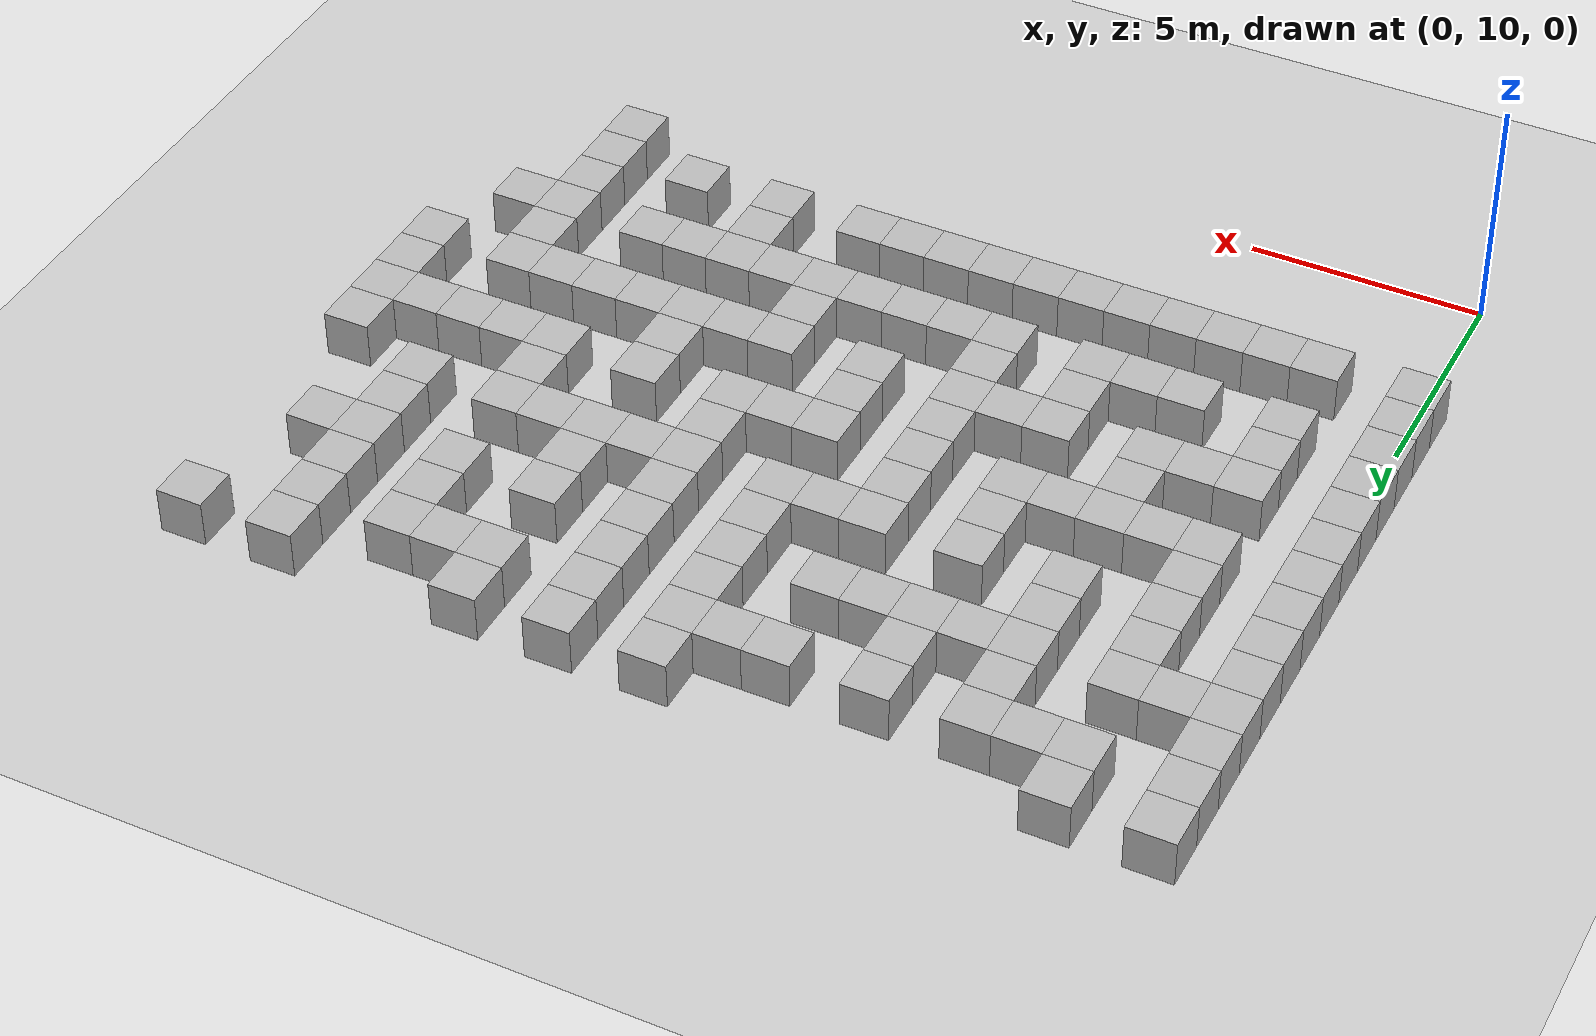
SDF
<sdf version="1.8">
 <world name="custom_maze">
  <model name="ground_plane">
   <static>1</static>
   <link name="link">
    <collision name="collision">
     <geometry><plane><normal>0 0 1</normal><size>100 100</size></plane></geometry>
    </collision>
    <visual name="visual">
     <geometry><plane><normal>0 0 1</normal><size>100 100</size></plane></geometry>
     <material>
      <ambient>0.8 0.8 0.8 1</ambient>
      <diffuse>0.8 0.8 0.8 1</diffuse>
      <specular>0.8 0.8 0.8 1</specular>
     </material>
     <plugin name="__default__" filename="__default__"/>
    </visual>
   </link>
   <plugin name="__default__" filename="__default__"/>
  </model>
  <model name="obstacles">
   <pose>0 0 0.5 0 0 0</pose>
   <static>true</static>
   <link name="wall1">
    <pose>18 17 0 0 0 0</pose>
    <static>true</static>
    <collision name="wall1_collision"><geometry><box><size>1 1 1</size></box></geometry></collision>
    <visual name="wall1_visual"><geometry><box><size>1 1 1</size></box></geometry></visual>
   </link>
   <link name="wall4">
    <pose>11 14 0 0 0 0</pose>
    <static>true</static>
    <collision name="wall4_collision"><geometry><box><size>1 1 1</size></box></geometry></collision>
    <visual name="wall4_visual"><geometry><box><size>1 1 1</size></box></geometry></visual>
   </link>
   <link name="wall9">
    <pose>14 24 0 0 0 0</pose>
    <static>true</static>
    <collision name="wall9_collision"><geometry><box><size>1 1 1</size></box></geometry></collision>
    <visual name="wall9_visual"><geometry><box><size>1 1 1</size></box></geometry></visual>
   </link>
   <link name="wall14">
    <pose>2 27 0 0 0 0</pose>
    <static>true</static>
    <collision name="wall14_collision"><geometry><box><size>1 1 1</size></box></geometry></collision>
    <visual name="wall14_visual"><geometry><box><size>1 1 1</size></box></geometry></visual>
   </link>
   <link name="wall31">
    <pose>14 14 0 0 0 0</pose>
    <static>true</static>
    <collision name="wall31_collision"><geometry><box><size>1 1 1</size></box></geometry></collision>
    <visual name="wall31_visual"><geometry><box><size>1 1 1</size></box></geometry></visual>
   </link>
   <link name="wall35">
    <pose>2 17 0 0 0 0</pose>
    <static>true</static>
    <collision name="wall35_collision"><geometry><box><size>1 1 1</size></box></geometry></collision>
    <visual name="wall35_visual"><geometry><box><size>1 1 1</size></box></geometry></visual>
   </link>
   <link name="wall37">
    <pose>3 18 0 0 0 0</pose>
    <static>true</static>
    <collision name="wall37_collision"><geometry><box><size>1 1 1</size></box></geometry></collision>
    <visual name="wall37_visual"><geometry><box><size>1 1 1</size></box></geometry></visual>
   </link>
   <link name="wall56">
    <pose>13 22 0 0 0 0</pose>
    <static>true</static>
    <collision name="wall56_collision"><geometry><box><size>1 1 1</size></box></geometry></collision>
    <visual name="wall56_visual"><geometry><box><size>1 1 1</size></box></geometry></visual>
   </link>
   <link name="wall63">
    <pose>6 18 0 0 0 0</pose>
    <static>true</static>
    <collision name="wall63_collision"><geometry><box><size>1 1 1</size></box></geometry></collision>
    <visual name="wall63_visual"><geometry><box><size>1 1 1</size></box></geometry></visual>
   </link>
   <link name="wall69">
    <pose>1 24 0 0 0 0</pose>
    <static>true</static>
    <collision name="wall69_collision"><geometry><box><size>1 1 1</size></box></geometry></collision>
    <visual name="wall69_visual"><geometry><box><size>1 1 1</size></box></geometry></visual>
   </link>
   <link name="wall77">
    <pose>9 14 0 0 0 0</pose>
    <static>true</static>
    <collision name="wall77_collision"><geometry><box><size>1 1 1</size></box></geometry></collision>
    <visual name="wall77_visual"><geometry><box><size>1 1 1</size></box></geometry></visual>
   </link>
   <link name="wall80">
    <pose>12 24 0 0 0 0</pose>
    <static>true</static>
    <collision name="wall80_collision"><geometry><box><size>1 1 1</size></box></geometry></collision>
    <visual name="wall80_visual"><geometry><box><size>1 1 1</size></box></geometry></visual>
   </link>
   <link name="wall81">
    <pose>4 20 0 0 0 0</pose>
    <static>true</static>
    <collision name="wall81_collision"><geometry><box><size>1 1 1</size></box></geometry></collision>
    <visual name="wall81_visual"><geometry><box><size>1 1 1</size></box></geometry></visual>
   </link>
   <link name="wall86">
    <pose>0 27 0 0 0 0</pose>
    <static>true</static>
    <collision name="wall86_collision"><geometry><box><size>1 1 1</size></box></geometry></collision>
    <visual name="wall86_visual"><geometry><box><size>1 1 1</size></box></geometry></visual>
   </link>
   <link name="wall99">
    <pose>20 18 0 0 0 0</pose>
    <static>true</static>
    <collision name="wall99_collision"><geometry><box><size>1 1 1</size></box></geometry></collision>
    <visual name="wall99_visual"><geometry><box><size>1 1 1</size></box></geometry></visual>
   </link>
   <link name="wall100">
    <pose>12 14 0 0 0 0</pose>
    <static>true</static>
    <collision name="wall100_collision"><geometry><box><size>1 1 1</size></box></geometry></collision>
    <visual name="wall100_visual"><geometry><box><size>1 1 1</size></box></geometry></visual>
   </link>
   <link name="wall105">
    <pose>8 21 0 0 0 0</pose>
    <static>true</static>
    <collision name="wall105_collision"><geometry><box><size>1 1 1</size></box></geometry></collision>
    <visual name="wall105_visual"><geometry><box><size>1 1 1</size></box></geometry></visual>
   </link>
   <link name="wall106">
    <pose>0 17 0 0 0 0</pose>
    <static>true</static>
    <collision name="wall106_collision"><geometry><box><size>1 1 1</size></box></geometry></collision>
    <visual name="wall106_visual"><geometry><box><size>1 1 1</size></box></geometry></visual>
   </link>
   <link name="wall122">
    <pose>11 16 0 0 0 0</pose>
    <static>true</static>
    <collision name="wall122_collision"><geometry><box><size>1 1 1</size></box></geometry></collision>
    <visual name="wall122_visual"><geometry><box><size>1 1 1</size></box></geometry></visual>
   </link>
   <link name="wall123">
    <pose>10 20 0 0 0 0</pose>
    <static>true</static>
    <collision name="wall123_collision"><geometry><box><size>1 1 1</size></box></geometry></collision>
    <visual name="wall123_visual"><geometry><box><size>1 1 1</size></box></geometry></visual>
   </link>
   <link name="wall129">
    <pose>14 26 0 0 0 0</pose>
    <static>true</static>
    <collision name="wall129_collision"><geometry><box><size>1 1 1</size></box></geometry></collision>
    <visual name="wall129_visual"><geometry><box><size>1 1 1</size></box></geometry></visual>
   </link>
   <link name="wall147">
    <pose>14 16 0 0 0 0</pose>
    <static>true</static>
    <collision name="wall147_collision"><geometry><box><size>1 1 1</size></box></geometry></collision>
    <visual name="wall147_visual"><geometry><box><size>1 1 1</size></box></geometry></visual>
   </link>
   <link name="wall151">
    <pose>6 17 0 0 0 0</pose>
    <static>true</static>
    <collision name="wall151_collision"><geometry><box><size>1 1 1</size></box></geometry></collision>
    <visual name="wall151_visual"><geometry><box><size>1 1 1</size></box></geometry></visual>
   </link>
   <link name="wall152">
    <pose>10 23 0 0 0 0</pose>
    <static>true</static>
    <collision name="wall152_collision"><geometry><box><size>1 1 1</size></box></geometry></collision>
    <visual name="wall152_visual"><geometry><box><size>1 1 1</size></box></geometry></visual>
   </link>
   <link name="wall166">
    <pose>20 27 0 0 0 0</pose>
    <static>true</static>
    <collision name="wall166_collision"><geometry><box><size>1 1 1</size></box></geometry></collision>
    <visual name="wall166_visual"><geometry><box><size>1 1 1</size></box></geometry></visual>
   </link>
   <link name="wall173">
    <pose>9 26 0 0 0 0</pose>
    <static>true</static>
    <collision name="wall173_collision"><geometry><box><size>1 1 1</size></box></geometry></collision>
    <visual name="wall173_visual"><geometry><box><size>1 1 1</size></box></geometry></visual>
   </link>
   <link name="wall176">
    <pose>6 20 0 0 0 0</pose>
    <static>true</static>
    <collision name="wall176_collision"><geometry><box><size>1 1 1</size></box></geometry></collision>
    <visual name="wall176_visual"><geometry><box><size>1 1 1</size></box></geometry></visual>
   </link>
   <link name="wall189">
    <pose>9 16 0 0 0 0</pose>
    <static>true</static>
    <collision name="wall189_collision"><geometry><box><size>1 1 1</size></box></geometry></collision>
    <visual name="wall189_visual"><geometry><box><size>1 1 1</size></box></geometry></visual>
   </link>
   <link name="wall190">
    <pose>8 20 0 0 0 0</pose>
    <static>true</static>
    <collision name="wall190_collision"><geometry><box><size>1 1 1</size></box></geometry></collision>
    <visual name="wall190_visual"><geometry><box><size>1 1 1</size></box></geometry></visual>
   </link>
   <link name="wall193">
    <pose>12 26 0 0 0 0</pose>
    <static>true</static>
    <collision name="wall193_collision"><geometry><box><size>1 1 1</size></box></geometry></collision>
    <visual name="wall193_visual"><geometry><box><size>1 1 1</size></box></geometry></visual>
   </link>
   <link name="wall194">
    <pose>4 22 0 0 0 0</pose>
    <static>true</static>
    <collision name="wall194_collision"><geometry><box><size>1 1 1</size></box></geometry></collision>
    <visual name="wall194_visual"><geometry><box><size>1 1 1</size></box></geometry></visual>
   </link>
   <link name="wall209">
    <pose>12 16 0 0 0 0</pose>
    <static>true</static>
    <collision name="wall209_collision"><geometry><box><size>1 1 1</size></box></geometry></collision>
    <visual name="wall209_visual"><geometry><box><size>1 1 1</size></box></geometry></visual>
   </link>
   <link name="wall214">
    <pose>15 26 0 0 0 0</pose>
    <static>true</static>
    <collision name="wall214_collision"><geometry><box><size>1 1 1</size></box></geometry></collision>
    <visual name="wall214_visual"><geometry><box><size>1 1 1</size></box></geometry></visual>
   </link>
   <link name="wall217">
    <pose>0 19 0 0 0 0</pose>
    <static>true</static>
    <collision name="wall217_collision"><geometry><box><size>1 1 1</size></box></geometry></collision>
    <visual name="wall217_visual"><geometry><box><size>1 1 1</size></box></geometry></visual>
   </link>
   <link name="wall227">
    <pose>14 15 0 0 0 0</pose>
    <static>true</static>
    <collision name="wall227_collision"><geometry><box><size>1 1 1</size></box></geometry></collision>
    <visual name="wall227_visual"><geometry><box><size>1 1 1</size></box></geometry></visual>
   </link>
   <link name="wall230">
    <pose>15 16 0 0 0 0</pose>
    <static>true</static>
    <collision name="wall230_collision"><geometry><box><size>1 1 1</size></box></geometry></collision>
    <visual name="wall230_visual"><geometry><box><size>1 1 1</size></box></geometry></visual>
   </link>
   <link name="wall234">
    <pose>10 22 0 0 0 0</pose>
    <static>true</static>
    <collision name="wall234_collision"><geometry><box><size>1 1 1</size></box></geometry></collision>
    <visual name="wall234_visual"><geometry><box><size>1 1 1</size></box></geometry></visual>
   </link>
   <link name="wall256">
    <pose>14 18 0 0 0 0</pose>
    <static>true</static>
    <collision name="wall256_collision"><geometry><box><size>1 1 1</size></box></geometry></collision>
    <visual name="wall256_visual"><geometry><box><size>1 1 1</size></box></geometry></visual>
   </link>
   <link name="wall259">
    <pose>10 25 0 0 0 0</pose>
    <static>true</static>
    <collision name="wall259_collision"><geometry><box><size>1 1 1</size></box></geometry></collision>
    <visual name="wall259_visual"><geometry><box><size>1 1 1</size></box></geometry></visual>
   </link>
   <link name="wall260">
    <pose>2 21 0 0 0 0</pose>
    <static>true</static>
    <collision name="wall260_collision"><geometry><box><size>1 1 1</size></box></geometry></collision>
    <visual name="wall260_visual"><geometry><box><size>1 1 1</size></box></geometry></visual>
   </link>
   <link name="wall269">
    <pose>16 18 0 0 0 0</pose>
    <static>true</static>
    <collision name="wall269_collision"><geometry><box><size>1 1 1</size></box></geometry></collision>
    <visual name="wall269_visual"><geometry><box><size>1 1 1</size></box></geometry></visual>
   </link>
   <link name="wall276">
    <pose>12 25 0 0 0 0</pose>
    <static>true</static>
    <collision name="wall276_collision"><geometry><box><size>1 1 1</size></box></geometry></collision>
    <visual name="wall276_visual"><geometry><box><size>1 1 1</size></box></geometry></visual>
   </link>
   <link name="wall294">
    <pose>20 19 0 0 0 0</pose>
    <static>true</static>
    <collision name="wall294_collision"><geometry><box><size>1 1 1</size></box></geometry></collision>
    <visual name="wall294_visual"><geometry><box><size>1 1 1</size></box></geometry></visual>
   </link>
   <link name="wall296">
    <pose>13 16 0 0 0 0</pose>
    <static>true</static>
    <collision name="wall296_collision"><geometry><box><size>1 1 1</size></box></geometry></collision>
    <visual name="wall296_visual"><geometry><box><size>1 1 1</size></box></geometry></visual>
   </link>
   <link name="wall297">
    <pose>16 21 0 0 0 0</pose>
    <static>true</static>
    <collision name="wall297_collision"><geometry><box><size>1 1 1</size></box></geometry></collision>
    <visual name="wall297_visual"><geometry><box><size>1 1 1</size></box></geometry></visual>
   </link>
   <link name="wall299">
    <pose>8 22 0 0 0 0</pose>
    <static>true</static>
    <collision name="wall299_collision"><geometry><box><size>1 1 1</size></box></geometry></collision>
    <visual name="wall299_visual"><geometry><box><size>1 1 1</size></box></geometry></visual>
   </link>
   <link name="wall300">
    <pose>0 18 0 0 0 0</pose>
    <static>true</static>
    <collision name="wall300_collision"><geometry><box><size>1 1 1</size></box></geometry></collision>
    <visual name="wall300_visual"><geometry><box><size>1 1 1</size></box></geometry></visual>
   </link>
   <link name="wall304">
    <pose>4 24 0 0 0 0</pose>
    <static>true</static>
    <collision name="wall304_collision"><geometry><box><size>1 1 1</size></box></geometry></collision>
    <visual name="wall304_visual"><geometry><box><size>1 1 1</size></box></geometry></visual>
   </link>
   <link name="wall316">
    <pose>18 20 0 0 0 0</pose>
    <static>true</static>
    <collision name="wall316_collision"><geometry><box><size>1 1 1</size></box></geometry></collision>
    <visual name="wall316_visual"><geometry><box><size>1 1 1</size></box></geometry></visual>
   </link>
   <link name="wall320">
    <pose>4 14 0 0 0 0</pose>
    <static>true</static>
    <collision name="wall320_collision"><geometry><box><size>1 1 1</size></box></geometry></collision>
    <visual name="wall320_visual"><geometry><box><size>1 1 1</size></box></geometry></visual>
   </link>
   <link name="wall322">
    <pose>14 27 0 0 0 0</pose>
    <static>true</static>
    <collision name="wall322_collision"><geometry><box><size>1 1 1</size></box></geometry></collision>
    <visual name="wall322_visual"><geometry><box><size>1 1 1</size></box></geometry></visual>
   </link>
   <link name="wall324">
    <pose>7 24 0 0 0 0</pose>
    <static>true</static>
    <collision name="wall324_collision"><geometry><box><size>1 1 1</size></box></geometry></collision>
    <visual name="wall324_visual"><geometry><box><size>1 1 1</size></box></geometry></visual>
   </link>
   <link name="wall327">
    <pose>0 21 0 0 0 0</pose>
    <static>true</static>
    <collision name="wall327_collision"><geometry><box><size>1 1 1</size></box></geometry></collision>
    <visual name="wall327_visual"><geometry><box><size>1 1 1</size></box></geometry></visual>
   </link>
   <link name="wall338">
    <pose>15 18 0 0 0 0</pose>
    <static>true</static>
    <collision name="wall338_collision"><geometry><box><size>1 1 1</size></box></geometry></collision>
    <visual name="wall338_visual"><geometry><box><size>1 1 1</size></box></geometry></visual>
   </link>
   <link name="wall339">
    <pose>7 14 0 0 0 0</pose>
    <static>true</static>
    <collision name="wall339_collision"><geometry><box><size>1 1 1</size></box></geometry></collision>
    <visual name="wall339_visual"><geometry><box><size>1 1 1</size></box></geometry></visual>
   </link>
   <link name="wall340">
    <pose>18 23 0 0 0 0</pose>
    <static>true</static>
    <collision name="wall340_collision"><geometry><box><size>1 1 1</size></box></geometry></collision>
    <visual name="wall340_visual"><geometry><box><size>1 1 1</size></box></geometry></visual>
   </link>
   <link name="wall343">
    <pose>10 24 0 0 0 0</pose>
    <static>true</static>
    <collision name="wall343_collision"><geometry><box><size>1 1 1</size></box></geometry></collision>
    <visual name="wall343_visual"><geometry><box><size>1 1 1</size></box></geometry></visual>
   </link>
   <link name="wall344">
    <pose>2 20 0 0 0 0</pose>
    <static>true</static>
    <collision name="wall344_collision"><geometry><box><size>1 1 1</size></box></geometry></collision>
    <visual name="wall344_visual"><geometry><box><size>1 1 1</size></box></geometry></visual>
   </link>
   <link name="wall355">
    <pose>17 18 0 0 0 0</pose>
    <static>true</static>
    <collision name="wall355_collision"><geometry><box><size>1 1 1</size></box></geometry></collision>
    <visual name="wall355_visual"><geometry><box><size>1 1 1</size></box></geometry></visual>
   </link>
   <link name="wall361">
    <pose>10 14 0 0 0 0</pose>
    <static>true</static>
    <collision name="wall361_collision"><geometry><box><size>1 1 1</size></box></geometry></collision>
    <visual name="wall361_visual"><geometry><box><size>1 1 1</size></box></geometry></visual>
   </link>
   <link name="wall366">
    <pose>5 20 0 0 0 0</pose>
    <static>true</static>
    <collision name="wall366_collision"><geometry><box><size>1 1 1</size></box></geometry></collision>
    <visual name="wall366_visual"><geometry><box><size>1 1 1</size></box></geometry></visual>
   </link>
   <link name="wall369">
    <pose>6 21 0 0 0 0</pose>
    <static>true</static>
    <collision name="wall369_collision"><geometry><box><size>1 1 1</size></box></geometry></collision>
    <visual name="wall369_visual"><geometry><box><size>1 1 1</size></box></geometry></visual>
   </link>
   <link name="wall371">
    <pose>2 23 0 0 0 0</pose>
    <static>true</static>
    <collision name="wall371_collision"><geometry><box><size>1 1 1</size></box></geometry></collision>
    <visual name="wall371_visual"><geometry><box><size>1 1 1</size></box></geometry></visual>
   </link>
   <link name="wall378">
    <pose>16 20 0 0 0 0</pose>
    <static>true</static>
    <collision name="wall378_collision"><geometry><box><size>1 1 1</size></box></geometry></collision>
    <visual name="wall378_visual"><geometry><box><size>1 1 1</size></box></geometry></visual>
   </link>
   <link name="wall383">
    <pose>12 27 0 0 0 0</pose>
    <static>true</static>
    <collision name="wall383_collision"><geometry><box><size>1 1 1</size></box></geometry></collision>
    <visual name="wall383_visual"><geometry><box><size>1 1 1</size></box></geometry></visual>
   </link>
   <link name="wall385">
    <pose>4 23 0 0 0 0</pose>
    <static>true</static>
    <collision name="wall385_collision"><geometry><box><size>1 1 1</size></box></geometry></collision>
    <visual name="wall385_visual"><geometry><box><size>1 1 1</size></box></geometry></visual>
   </link>
   <link name="wall400">
    <pose>19 20 0 0 0 0</pose>
    <static>true</static>
    <collision name="wall400_collision"><geometry><box><size>1 1 1</size></box></geometry></collision>
    <visual name="wall400_visual"><geometry><box><size>1 1 1</size></box></geometry></visual>
   </link>
   <link name="wall401">
    <pose>20 21 0 0 0 0</pose>
    <static>true</static>
    <collision name="wall401_collision"><geometry><box><size>1 1 1</size></box></geometry></collision>
    <visual name="wall401_visual"><geometry><box><size>1 1 1</size></box></geometry></visual>
   </link>
   <link name="wall403">
    <pose>12 17 0 0 0 0</pose>
    <static>true</static>
    <collision name="wall403_collision"><geometry><box><size>1 1 1</size></box></geometry></collision>
    <visual name="wall403_visual"><geometry><box><size>1 1 1</size></box></geometry></visual>
   </link>
   <link name="wall407">
    <pose>13 18 0 0 0 0</pose>
    <static>true</static>
    <collision name="wall407_collision"><geometry><box><size>1 1 1</size></box></geometry></collision>
    <visual name="wall407_visual"><geometry><box><size>1 1 1</size></box></geometry></visual>
   </link>
   <link name="wall410">
    <pose>8 24 0 0 0 0</pose>
    <static>true</static>
    <collision name="wall410_collision"><geometry><box><size>1 1 1</size></box></geometry></collision>
    <visual name="wall410_visual"><geometry><box><size>1 1 1</size></box></geometry></visual>
   </link>
   <link name="wall411">
    <pose>0 20 0 0 0 0</pose>
    <static>true</static>
    <collision name="wall411_collision"><geometry><box><size>1 1 1</size></box></geometry></collision>
    <visual name="wall411_visual"><geometry><box><size>1 1 1</size></box></geometry></visual>
   </link>
   <link name="wall413">
    <pose>4 26 0 0 0 0</pose>
    <static>true</static>
    <collision name="wall413_collision"><geometry><box><size>1 1 1</size></box></geometry></collision>
    <visual name="wall413_visual"><geometry><box><size>1 1 1</size></box></geometry></visual>
   </link>
   <link name="wall432">
    <pose>18 22 0 0 0 0</pose>
    <static>true</static>
    <collision name="wall432_collision"><geometry><box><size>1 1 1</size></box></geometry></collision>
    <visual name="wall432_visual"><geometry><box><size>1 1 1</size></box></geometry></visual>
   </link>
   <link name="wall433">
    <pose>8 14 0 0 0 0</pose>
    <static>true</static>
    <collision name="wall433_collision"><geometry><box><size>1 1 1</size></box></geometry></collision>
    <visual name="wall433_visual"><geometry><box><size>1 1 1</size></box></geometry></visual>
   </link>
   <link name="wall437">
    <pose>4 16 0 0 0 0</pose>
    <static>true</static>
    <collision name="wall437_collision"><geometry><box><size>1 1 1</size></box></geometry></collision>
    <visual name="wall437_visual"><geometry><box><size>1 1 1</size></box></geometry></visual>
   </link>
   <link name="wall438">
    <pose>3 20 0 0 0 0</pose>
    <static>true</static>
    <collision name="wall438_collision"><geometry><box><size>1 1 1</size></box></geometry></collision>
    <visual name="wall438_visual"><geometry><box><size>1 1 1</size></box></geometry></visual>
   </link>
   <link name="wall443">
    <pose>0 23 0 0 0 0</pose>
    <static>true</static>
    <collision name="wall443_collision"><geometry><box><size>1 1 1</size></box></geometry></collision>
    <visual name="wall443_visual"><geometry><box><size>1 1 1</size></box></geometry></visual>
   </link>
   <link name="wall454">
    <pose>14 19 0 0 0 0</pose>
    <static>true</static>
    <collision name="wall454_collision"><geometry><box><size>1 1 1</size></box></geometry></collision>
    <visual name="wall454_visual"><geometry><box><size>1 1 1</size></box></geometry></visual>
   </link>
   <link name="wall459">
    <pose>10 26 0 0 0 0</pose>
    <static>true</static>
    <collision name="wall459_collision"><geometry><box><size>1 1 1</size></box></geometry></collision>
    <visual name="wall459_visual"><geometry><box><size>1 1 1</size></box></geometry></visual>
   </link>
   <link name="wall460">
    <pose>2 22 0 0 0 0</pose>
    <static>true</static>
    <collision name="wall460_collision"><geometry><box><size>1 1 1</size></box></geometry></collision>
    <visual name="wall460_visual"><geometry><box><size>1 1 1</size></box></geometry></visual>
   </link>
   <link name="wall471">
    <pose>17 20 0 0 0 0</pose>
    <static>true</static>
    <collision name="wall471_collision"><geometry><box><size>1 1 1</size></box></geometry></collision>
    <visual name="wall471_visual"><geometry><box><size>1 1 1</size></box></geometry></visual>
   </link>
   <link name="wall477">
    <pose>10 16 0 0 0 0</pose>
    <static>true</static>
    <collision name="wall477_collision"><geometry><box><size>1 1 1</size></box></geometry></collision>
    <visual name="wall477_visual"><geometry><box><size>1 1 1</size></box></geometry></visual>
   </link>
   <link name="wall494">
    <pose>20 20 0 0 0 0</pose>
    <static>true</static>
    <collision name="wall494_collision"><geometry><box><size>1 1 1</size></box></geometry></collision>
    <visual name="wall494_visual"><geometry><box><size>1 1 1</size></box></geometry></visual>
   </link>
   <link name="wall499">
    <pose>16 22 0 0 0 0</pose>
    <static>true</static>
    <collision name="wall499_collision"><geometry><box><size>1 1 1</size></box></geometry></collision>
    <visual name="wall499_visual"><geometry><box><size>1 1 1</size></box></geometry></visual>
   </link>
   <link name="wall507">
    <pose>4 25 0 0 0 0</pose>
    <static>true</static>
    <collision name="wall507_collision"><geometry><box><size>1 1 1</size></box></geometry></collision>
    <visual name="wall507_visual"><geometry><box><size>1 1 1</size></box></geometry></visual>
   </link>
   <link name="wall528">
    <pose>8 26 0 0 0 0</pose>
    <static>true</static>
    <collision name="wall528_collision"><geometry><box><size>1 1 1</size></box></geometry></collision>
    <visual name="wall528_visual"><geometry><box><size>1 1 1</size></box></geometry></visual>
   </link>
   <link name="wall529">
    <pose>0 22 0 0 0 0</pose>
    <static>true</static>
    <collision name="wall529_collision"><geometry><box><size>1 1 1</size></box></geometry></collision>
    <visual name="wall529_visual"><geometry><box><size>1 1 1</size></box></geometry></visual>
   </link>
   <link name="wall549">
    <pose>18 24 0 0 0 0</pose>
    <static>true</static>
    <collision name="wall549_collision"><geometry><box><size>1 1 1</size></box></geometry></collision>
    <visual name="wall549_visual"><geometry><box><size>1 1 1</size></box></geometry></visual>
   </link>
   <link name="wall550">
    <pose>8 16 0 0 0 0</pose>
    <static>true</static>
    <collision name="wall550_collision"><geometry><box><size>1 1 1</size></box></geometry></collision>
    <visual name="wall550_visual"><geometry><box><size>1 1 1</size></box></geometry></visual>
   </link>
   <link name="wall567">
    <pose>18 14 0 0 0 0</pose>
    <static>true</static>
    <collision name="wall567_collision"><geometry><box><size>1 1 1</size></box></geometry></collision>
    <visual name="wall567_visual"><geometry><box><size>1 1 1</size></box></geometry></visual>
   </link>
   <link name="wall572">
    <pose>6 22 0 0 0 0</pose>
    <static>true</static>
    <collision name="wall572_collision"><geometry><box><size>1 1 1</size></box></geometry></collision>
    <visual name="wall572_visual"><geometry><box><size>1 1 1</size></box></geometry></visual>
   </link>
   <link name="wall576">
    <pose>2 24 0 0 0 0</pose>
    <static>true</static>
    <collision name="wall576_collision"><geometry><box><size>1 1 1</size></box></geometry></collision>
    <visual name="wall576_visual"><geometry><box><size>1 1 1</size></box></geometry></visual>
   </link>
   <link name="wall589">
    <pose>10 18 0 0 0 0</pose>
    <static>true</static>
    <collision name="wall589_collision"><geometry><box><size>1 1 1</size></box></geometry></collision>
    <visual name="wall589_visual"><geometry><box><size>1 1 1</size></box></geometry></visual>
   </link>
   <link name="wall590">
    <pose>2 14 0 0 0 0</pose>
    <static>true</static>
    <collision name="wall590_collision"><geometry><box><size>1 1 1</size></box></geometry></collision>
    <visual name="wall590_visual"><geometry><box><size>1 1 1</size></box></geometry></visual>
   </link>
   <link name="wall595">
    <pose>5 24 0 0 0 0</pose>
    <static>true</static>
    <collision name="wall595_collision"><geometry><box><size>1 1 1</size></box></geometry></collision>
    <visual name="wall595_visual"><geometry><box><size>1 1 1</size></box></geometry></visual>
   </link>
   <link name="wall597">
    <pose>6 25 0 0 0 0</pose>
    <static>true</static>
    <collision name="wall597_collision"><geometry><box><size>1 1 1</size></box></geometry></collision>
    <visual name="wall597_visual"><geometry><box><size>1 1 1</size></box></geometry></visual>
   </link>
   <link name="wall604">
    <pose>12 18 0 0 0 0</pose>
    <static>true</static>
    <collision name="wall604_collision"><geometry><box><size>1 1 1</size></box></geometry></collision>
    <visual name="wall604_visual"><geometry><box><size>1 1 1</size></box></geometry></visual>
   </link>
   <link name="wall609">
    <pose>16 24 0 0 0 0</pose>
    <static>true</static>
    <collision name="wall609_collision"><geometry><box><size>1 1 1</size></box></geometry></collision>
    <visual name="wall609_visual"><geometry><box><size>1 1 1</size></box></geometry></visual>
   </link>
   <link name="wall611">
    <pose>5 14 0 0 0 0</pose>
    <static>true</static>
    <collision name="wall611_collision"><geometry><box><size>1 1 1</size></box></geometry></collision>
    <visual name="wall611_visual"><geometry><box><size>1 1 1</size></box></geometry></visual>
   </link>
   <link name="wall628">
    <pose>16 14 0 0 0 0</pose>
    <static>true</static>
    <collision name="wall628_collision"><geometry><box><size>1 1 1</size></box></geometry></collision>
    <visual name="wall628_visual"><geometry><box><size>1 1 1</size></box></geometry></visual>
   </link>
   <link name="wall632">
    <pose>19 24 0 0 0 0</pose>
    <static>true</static>
    <collision name="wall632_collision"><geometry><box><size>1 1 1</size></box></geometry></collision>
    <visual name="wall632_visual"><geometry><box><size>1 1 1</size></box></geometry></visual>
   </link>
   <link name="wall633">
    <pose>11 20 0 0 0 0</pose>
    <static>true</static>
    <collision name="wall633_collision"><geometry><box><size>1 1 1</size></box></geometry></collision>
    <visual name="wall633_visual"><geometry><box><size>1 1 1</size></box></geometry></visual>
   </link>
   <link name="wall634">
    <pose>12 21 0 0 0 0</pose>
    <static>true</static>
    <collision name="wall634_collision"><geometry><box><size>1 1 1</size></box></geometry></collision>
    <visual name="wall634_visual"><geometry><box><size>1 1 1</size></box></geometry></visual>
   </link>
   <link name="wall641">
    <pose>0 24 0 0 0 0</pose>
    <static>true</static>
    <collision name="wall641_collision"><geometry><box><size>1 1 1</size></box></geometry></collision>
    <visual name="wall641_visual"><geometry><box><size>1 1 1</size></box></geometry></visual>
   </link>
   <link name="wall647">
    <pose>18 13 0 0 0 0</pose>
    <static>true</static>
    <collision name="wall647_collision"><geometry><box><size>1 1 1</size></box></geometry></collision>
    <visual name="wall647_visual"><geometry><box><size>1 1 1</size></box></geometry></visual>
   </link>
   <link name="wall656">
    <pose>14 20 0 0 0 0</pose>
    <static>true</static>
    <collision name="wall656_collision"><geometry><box><size>1 1 1</size></box></geometry></collision>
    <visual name="wall656_visual"><geometry><box><size>1 1 1</size></box></geometry></visual>
   </link>
   <link name="wall660">
    <pose>18 26 0 0 0 0</pose>
    <static>true</static>
    <collision name="wall660_collision"><geometry><box><size>1 1 1</size></box></geometry></collision>
    <visual name="wall660_visual"><geometry><box><size>1 1 1</size></box></geometry></visual>
   </link>
   <link name="wall662">
    <pose>8 18 0 0 0 0</pose>
    <static>true</static>
    <collision name="wall662_collision"><geometry><box><size>1 1 1</size></box></geometry></collision>
    <visual name="wall662_visual"><geometry><box><size>1 1 1</size></box></geometry></visual>
   </link>
   <link name="wall663">
    <pose>0 14 0 0 0 0</pose>
    <static>true</static>
    <collision name="wall663_collision"><geometry><box><size>1 1 1</size></box></geometry></collision>
    <visual name="wall663_visual"><geometry><box><size>1 1 1</size></box></geometry></visual>
   </link>
   <link name="wall664">
    <pose>10 27 0 0 0 0</pose>
    <static>true</static>
    <collision name="wall664_collision"><geometry><box><size>1 1 1</size></box></geometry></collision>
    <visual name="wall664_visual"><geometry><box><size>1 1 1</size></box></geometry></visual>
   </link>
   <link name="wall683">
    <pose>18 16 0 0 0 0</pose>
    <static>true</static>
    <collision name="wall683_collision"><geometry><box><size>1 1 1</size></box></geometry></collision>
    <visual name="wall683_visual"><geometry><box><size>1 1 1</size></box></geometry></visual>
   </link>
   <link name="wall687">
    <pose>3 14 0 0 0 0</pose>
    <static>true</static>
    <collision name="wall687_collision"><geometry><box><size>1 1 1</size></box></geometry></collision>
    <visual name="wall687_visual"><geometry><box><size>1 1 1</size></box></geometry></visual>
   </link>
   <link name="wall688">
    <pose>14 23 0 0 0 0</pose>
    <static>true</static>
    <collision name="wall688_collision"><geometry><box><size>1 1 1</size></box></geometry></collision>
    <visual name="wall688_visual"><geometry><box><size>1 1 1</size></box></geometry></visual>
   </link>
   <link name="wall691">
    <pose>6 24 0 0 0 0</pose>
    <static>true</static>
    <collision name="wall691_collision"><geometry><box><size>1 1 1</size></box></geometry></collision>
    <visual name="wall691_visual"><geometry><box><size>1 1 1</size></box></geometry></visual>
   </link>
   <link name="wall695">
    <pose>2 26 0 0 0 0</pose>
    <static>true</static>
    <collision name="wall695_collision"><geometry><box><size>1 1 1</size></box></geometry></collision>
    <visual name="wall695_visual"><geometry><box><size>1 1 1</size></box></geometry></visual>
   </link>
   <link name="wall708">
    <pose>6 14 0 0 0 0</pose>
    <static>true</static>
    <collision name="wall708_collision"><geometry><box><size>1 1 1</size></box></geometry></collision>
    <visual name="wall708_visual"><geometry><box><size>1 1 1</size></box></geometry></visual>
   </link>
   <link name="wall713">
    <pose>2 16 0 0 0 0</pose>
    <static>true</static>
    <collision name="wall713_collision"><geometry><box><size>1 1 1</size></box></geometry></collision>
    <visual name="wall713_visual"><geometry><box><size>1 1 1</size></box></geometry></visual>
   </link>
   <link name="wall724">
    <pose>12 20 0 0 0 0</pose>
    <static>true</static>
    <collision name="wall724_collision"><geometry><box><size>1 1 1</size></box></geometry></collision>
    <visual name="wall724_visual"><geometry><box><size>1 1 1</size></box></geometry></visual>
   </link>
   <link name="wall726">
    <pose>16 26 0 0 0 0</pose>
    <static>true</static>
    <collision name="wall726_collision"><geometry><box><size>1 1 1</size></box></geometry></collision>
    <visual name="wall726_visual"><geometry><box><size>1 1 1</size></box></geometry></visual>
   </link>
   <link name="wall729">
    <pose>5 16 0 0 0 0</pose>
    <static>true</static>
    <collision name="wall729_collision"><geometry><box><size>1 1 1</size></box></geometry></collision>
    <visual name="wall729_visual"><geometry><box><size>1 1 1</size></box></geometry></visual>
   </link>
   <link name="wall746">
    <pose>16 16 0 0 0 0</pose>
    <static>true</static>
    <collision name="wall746_collision"><geometry><box><size>1 1 1</size></box></geometry></collision>
    <visual name="wall746_visual"><geometry><box><size>1 1 1</size></box></geometry></visual>
   </link>
   <link name="wall747">
    <pose>18 25 0 0 0 0</pose>
    <static>true</static>
    <collision name="wall747_collision"><geometry><box><size>1 1 1</size></box></geometry></collision>
    <visual name="wall747_visual"><geometry><box><size>1 1 1</size></box></geometry></visual>
   </link>
   <link name="wall749">
    <pose>8 17 0 0 0 0</pose>
    <static>true</static>
    <collision name="wall749_collision"><geometry><box><size>1 1 1</size></box></geometry></collision>
    <visual name="wall749_visual"><geometry><box><size>1 1 1</size></box></geometry></visual>
   </link>
   <link name="wall754">
    <pose>12 23 0 0 0 0</pose>
    <static>true</static>
    <collision name="wall754_collision"><geometry><box><size>1 1 1</size></box></geometry></collision>
    <visual name="wall754_visual"><geometry><box><size>1 1 1</size></box></geometry></visual>
   </link>
   <link name="wall755">
    <pose>4 19 0 0 0 0</pose>
    <static>true</static>
    <collision name="wall755_collision"><geometry><box><size>1 1 1</size></box></geometry></collision>
    <visual name="wall755_visual"><geometry><box><size>1 1 1</size></box></geometry></visual>
   </link>
   <link name="wall762">
    <pose>0 26 0 0 0 0</pose>
    <static>true</static>
    <collision name="wall762_collision"><geometry><box><size>1 1 1</size></box></geometry></collision>
    <visual name="wall762_visual"><geometry><box><size>1 1 1</size></box></geometry></visual>
   </link>
   <link name="wall767">
    <pose>18 15 0 0 0 0</pose>
    <static>true</static>
    <collision name="wall767_collision"><geometry><box><size>1 1 1</size></box></geometry></collision>
    <visual name="wall767_visual"><geometry><box><size>1 1 1</size></box></geometry></visual>
   </link>
   <link name="wall772">
    <pose>19 16 0 0 0 0</pose>
    <static>true</static>
    <collision name="wall772_collision"><geometry><box><size>1 1 1</size></box></geometry></collision>
    <visual name="wall772_visual"><geometry><box><size>1 1 1</size></box></geometry></visual>
   </link>
   <link name="wall776">
    <pose>14 22 0 0 0 0</pose>
    <static>true</static>
    <collision name="wall776_collision"><geometry><box><size>1 1 1</size></box></geometry></collision>
    <visual name="wall776_visual"><geometry><box><size>1 1 1</size></box></geometry></visual>
   </link>
   <link name="wall781">
    <pose>0 16 0 0 0 0</pose>
    <static>true</static>
    <collision name="wall781_collision"><geometry><box><size>1 1 1</size></box></geometry></collision>
    <visual name="wall781_visual"><geometry><box><size>1 1 1</size></box></geometry></visual>
   </link>
   <link name="wall784">
    <pose>3 26 0 0 0 0</pose>
    <static>true</static>
    <collision name="wall784_collision"><geometry><box><size>1 1 1</size></box></geometry></collision>
    <visual name="wall784_visual"><geometry><box><size>1 1 1</size></box></geometry></visual>
   </link>
   <link name="wall798">
    <pose>18 18 0 0 0 0</pose>
    <static>true</static>
    <collision name="wall798_collision"><geometry><box><size>1 1 1</size></box></geometry></collision>
    <visual name="wall798_visual"><geometry><box><size>1 1 1</size></box></geometry></visual>
   </link>
   <link name="wall799">
    <pose>10 19 0 0 0 0</pose>
    <static>true</static>
    <collision name="wall799_collision"><geometry><box><size>1 1 1</size></box></geometry></collision>
    <visual name="wall799_visual"><geometry><box><size>1 1 1</size></box></geometry></visual>
   </link>
   <link name="wall805">
    <pose>6 26 0 0 0 0</pose>
    <static>true</static>
    <collision name="wall805_collision"><geometry><box><size>1 1 1</size></box></geometry></collision>
    <visual name="wall805_visual"><geometry><box><size>1 1 1</size></box></geometry></visual>
   </link>
   <link name="wall816">
    <pose>16 25 0 0 0 0</pose>
    <static>true</static>
    <collision name="wall816_collision"><geometry><box><size>1 1 1</size></box></geometry></collision>
    <visual name="wall816_visual"><geometry><box><size>1 1 1</size></box></geometry></visual>
   </link>
   <link name="wall818">
    <pose>9 22 0 0 0 0</pose>
    <static>true</static>
    <collision name="wall818_collision"><geometry><box><size>1 1 1</size></box></geometry></collision>
    <visual name="wall818_visual"><geometry><box><size>1 1 1</size></box></geometry></visual>
   </link>
   <link name="wall822">
    <pose>6 16 0 0 0 0</pose>
    <static>true</static>
    <collision name="wall822_collision"><geometry><box><size>1 1 1</size></box></geometry></collision>
    <visual name="wall822_visual"><geometry><box><size>1 1 1</size></box></geometry></visual>
   </link>
   <link name="wall827">
    <pose>2 18 0 0 0 0</pose>
    <static>true</static>
    <collision name="wall827_collision"><geometry><box><size>1 1 1</size></box></geometry></collision>
    <visual name="wall827_visual"><geometry><box><size>1 1 1</size></box></geometry></visual>
   </link>
   <link name="wall838">
    <pose>12 22 0 0 0 0</pose>
    <static>true</static>
    <collision name="wall838_collision"><geometry><box><size>1 1 1</size></box></geometry></collision>
    <visual name="wall838_visual"><geometry><box><size>1 1 1</size></box></geometry></visual>
   </link>
   <link name="wall839">
    <pose>4 18 0 0 0 0</pose>
    <static>true</static>
    <collision name="wall839_collision"><geometry><box><size>1 1 1</size></box></geometry></collision>
    <visual name="wall839_visual"><geometry><box><size>1 1 1</size></box></geometry></visual>
   </link>
   <link name="wall845">
    <pose>0 25 0 0 0 0</pose>
    <static>true</static>
    <collision name="wall845_collision"><geometry><box><size>1 1 1</size></box></geometry></collision>
    <visual name="wall845_visual"><geometry><box><size>1 1 1</size></box></geometry></visual>
   </link>
   <link name="wall862">
    <pose>15 22 0 0 0 0</pose>
    <static>true</static>
    <collision name="wall862_collision"><geometry><box><size>1 1 1</size></box></geometry></collision>
    <visual name="wall862_visual"><geometry><box><size>1 1 1</size></box></geometry></visual>
   </link>
   <link name="wall863">
    <pose>7 18 0 0 0 0</pose>
    <static>true</static>
    <collision name="wall863_collision"><geometry><box><size>1 1 1</size></box></geometry></collision>
    <visual name="wall863_visual"><geometry><box><size>1 1 1</size></box></geometry></visual>
   </link>
   <link name="wall864">
    <pose>18 27 0 0 0 0</pose>
    <static>true</static>
    <collision name="wall864_collision"><geometry><box><size>1 1 1</size></box></geometry></collision>
    <visual name="wall864_visual"><geometry><box><size>1 1 1</size></box></geometry></visual>
   </link>
   <link name="wall865">
    <pose>8 19 0 0 0 0</pose>
    <static>true</static>
    <collision name="wall865_collision"><geometry><box><size>1 1 1</size></box></geometry></collision>
    <visual name="wall865_visual"><geometry><box><size>1 1 1</size></box></geometry></visual>
   </link>
   <link name="wall867">
    <pose>0 15 0 0 0 0</pose>
    <static>true</static>
    <collision name="wall867_collision"><geometry><box><size>1 1 1</size></box></geometry></collision>
    <visual name="wall867_visual"><geometry><box><size>1 1 1</size></box></geometry></visual>
   </link>
  </model>
 </world>
</sdf>
